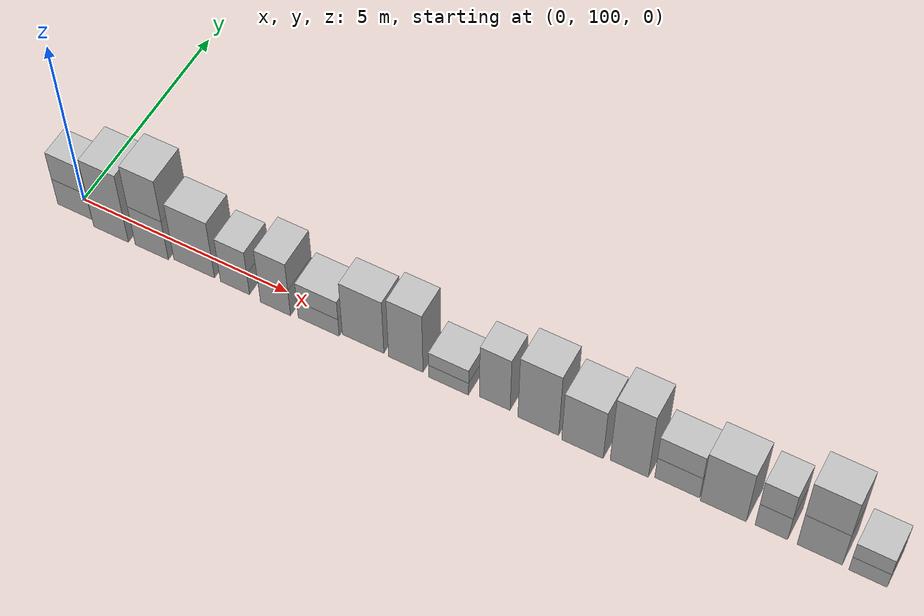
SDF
<sdf version="1.5">
 <world name="default">
  <model name="ground_plane">
   <static>true</static>
   <link name="link">
    <collision name="collision">
     <geometry><plane><normal>0 0 1</normal><size>250 250</size></plane></geometry>
     <surface><friction><ode><mu>1</mu><mu2>1</mu2></ode></friction></surface>
    </collision>
    <visual name="grass">
     <cast_shadows>false</cast_shadows>
     <geometry><mesh><uri>file://grass_plane/meshes/grass_plane.dae</uri></mesh></geometry>
    </visual>
   </link>
  </model>
  <model name="Cardboard_box_100">
   <link name="link_0">
    <pose>0 100 0 0 0 0</pose>
    <inertial>
     <mass>1</mass>
     <inertia>
      <ixx>0.166667</ixx>
      <ixy>0</ixy>
      <ixz>0</ixz>
      <iyy>0.166667</iyy>
      <iyz>0</iyz>
      <izz>0.166667</izz>
     </inertia>
    </inertial>
    <collision name="collision">
     <geometry>
      <mesh>
       <uri>model://Cardboard_box/meshes/cardboard_box.dae</uri>
       <scale>2.16633208267 1.80769235165 2.23867263901</scale>
      </mesh>
     </geometry>
    </collision>
    <visual name="visual">
     <geometry>
      <mesh>
       <uri>model://Cardboard_box/meshes/cardboard_box.dae</uri>
       <scale>2.16633208267 1.80769235165 2.23867263901</scale>
      </mesh>
     </geometry>
    </visual>
   </link>
   <static>1</static>
  </model>
  <model name="Cardboard_box_top_100">
   <link name="link_0">
    <pose>0 100 0.895469055602 0 0 0</pose>
    <inertial>
     <mass>1</mass>
     <inertia>
      <ixx>0.166667</ixx>
      <ixy>0</ixy>
      <ixz>0</ixz>
      <iyy>0.166667</iyy>
      <iyz>0</iyz>
      <izz>0.166667</izz>
     </inertia>
    </inertial>
    <collision name="collision">
     <geometry>
      <mesh>
       <uri>model://Cardboard_box/meshes/cardboard_box.dae</uri>
       <scale>2.16633208267 1.80769235165 2.23867263901</scale>
      </mesh>
     </geometry>
    </collision>
    <visual name="visual">
     <geometry>
      <mesh>
       <uri>model://Cardboard_box/meshes/cardboard_box.dae</uri>
       <scale>2.16633208267 1.80769235165 2.23867263901</scale>
      </mesh>
     </geometry>
    </visual>
   </link>
   <static>1</static>
  </model>
  <model name="Cardboard_box_101">
   <link name="link_0">
    <pose>1 100 0 0 0 0</pose>
    <inertial>
     <mass>1</mass>
     <inertia>
      <ixx>0.166667</ixx>
      <ixy>0</ixy>
      <ixz>0</ixz>
      <iyy>0.166667</iyy>
      <iyz>0</iyz>
      <izz>0.166667</izz>
     </inertia>
    </inertial>
    <collision name="collision">
     <geometry>
      <mesh>
       <uri>model://Cardboard_box/meshes/cardboard_box.dae</uri>
       <scale>2.17949136119 2.47186667254 5.81918530343</scale>
      </mesh>
     </geometry>
    </collision>
    <visual name="visual">
     <geometry>
      <mesh>
       <uri>model://Cardboard_box/meshes/cardboard_box.dae</uri>
       <scale>2.17949136119 2.47186667254 5.81918530343</scale>
      </mesh>
     </geometry>
    </visual>
   </link>
   <static>1</static>
  </model>
  <model name="Cardboard_box_102">
   <link name="link_0">
    <pose>2 100 0 0 0 0</pose>
    <inertial>
     <mass>1</mass>
     <inertia>
      <ixx>0.166667</ixx>
      <ixy>0</ixy>
      <ixz>0</ixz>
      <iyy>0.166667</iyy>
      <iyz>0</iyz>
      <izz>0.166667</izz>
     </inertia>
    </inertial>
    <collision name="collision">
     <geometry>
      <mesh>
       <uri>model://Cardboard_box/meshes/cardboard_box.dae</uri>
       <scale>2.05673330934 2.37601042429 3.41572289365</scale>
      </mesh>
     </geometry>
    </collision>
    <visual name="visual">
     <geometry>
      <mesh>
       <uri>model://Cardboard_box/meshes/cardboard_box.dae</uri>
       <scale>2.05673330934 2.37601042429 3.41572289365</scale>
      </mesh>
     </geometry>
    </visual>
   </link>
   <static>1</static>
  </model>
  <model name="Cardboard_box_top_102">
   <link name="link_0">
    <pose>2 100 1.36628915746 0 0 0</pose>
    <inertial>
     <mass>1</mass>
     <inertia>
      <ixx>0.166667</ixx>
      <ixy>0</ixy>
      <ixz>0</ixz>
      <iyy>0.166667</iyy>
      <iyz>0</iyz>
      <izz>0.166667</izz>
     </inertia>
    </inertial>
    <collision name="collision">
     <geometry>
      <mesh>
       <uri>model://Cardboard_box/meshes/cardboard_box.dae</uri>
       <scale>2.05673330934 2.37601042429 3.41572289365</scale>
      </mesh>
     </geometry>
    </collision>
    <visual name="visual">
     <geometry>
      <mesh>
       <uri>model://Cardboard_box/meshes/cardboard_box.dae</uri>
       <scale>2.05673330934 2.37601042429 3.41572289365</scale>
      </mesh>
     </geometry>
    </visual>
   </link>
   <static>1</static>
  </model>
  <model name="Cardboard_box_103">
   <link name="link_0">
    <pose>3 100 0 0 0 0</pose>
    <inertial>
     <mass>1</mass>
     <inertia>
      <ixx>0.166667</ixx>
      <ixy>0</ixy>
      <ixz>0</ixz>
      <iyy>0.166667</iyy>
      <iyz>0</iyz>
      <izz>0.166667</izz>
     </inertia>
    </inertial>
    <collision name="collision">
     <geometry>
      <mesh>
       <uri>model://Cardboard_box/meshes/cardboard_box.dae</uri>
       <scale>2.49335783592 2.04874953075 4.88450883684</scale>
      </mesh>
     </geometry>
    </collision>
    <visual name="visual">
     <geometry>
      <mesh>
       <uri>model://Cardboard_box/meshes/cardboard_box.dae</uri>
       <scale>2.49335783592 2.04874953075 4.88450883684</scale>
      </mesh>
     </geometry>
    </visual>
   </link>
   <static>1</static>
  </model>
  <model name="Cardboard_box_104">
   <link name="link_0">
    <pose>4 100 0 0 0 0</pose>
    <inertial>
     <mass>1</mass>
     <inertia>
      <ixx>0.166667</ixx>
      <ixy>0</ixy>
      <ixz>0</ixz>
      <iyy>0.166667</iyy>
      <iyz>0</iyz>
      <izz>0.166667</izz>
     </inertia>
    </inertial>
    <collision name="collision">
     <geometry>
      <mesh>
       <uri>model://Cardboard_box/meshes/cardboard_box.dae</uri>
       <scale>1.76096913824 2.12324264561 1.89348972585</scale>
      </mesh>
     </geometry>
    </collision>
    <visual name="visual">
     <geometry>
      <mesh>
       <uri>model://Cardboard_box/meshes/cardboard_box.dae</uri>
       <scale>1.76096913824 2.12324264561 1.89348972585</scale>
      </mesh>
     </geometry>
    </visual>
   </link>
   <static>1</static>
  </model>
  <model name="Cardboard_box_top_104">
   <link name="link_0">
    <pose>4 100 0.757395890339 0 0 0</pose>
    <inertial>
     <mass>1</mass>
     <inertia>
      <ixx>0.166667</ixx>
      <ixy>0</ixy>
      <ixz>0</ixz>
      <iyy>0.166667</iyy>
      <iyz>0</iyz>
      <izz>0.166667</izz>
     </inertia>
    </inertial>
    <collision name="collision">
     <geometry>
      <mesh>
       <uri>model://Cardboard_box/meshes/cardboard_box.dae</uri>
       <scale>1.76096913824 2.12324264561 1.89348972585</scale>
      </mesh>
     </geometry>
    </collision>
    <visual name="visual">
     <geometry>
      <mesh>
       <uri>model://Cardboard_box/meshes/cardboard_box.dae</uri>
       <scale>1.76096913824 2.12324264561 1.89348972585</scale>
      </mesh>
     </geometry>
    </visual>
   </link>
   <static>1</static>
  </model>
  <model name="Cardboard_box_105">
   <link name="link_0">
    <pose>5 100 0 0 0 0</pose>
    <inertial>
     <mass>1</mass>
     <inertia>
      <ixx>0.166667</ixx>
      <ixy>0</ixy>
      <ixz>0</ixz>
      <iyy>0.166667</iyy>
      <iyz>0</iyz>
      <izz>0.166667</izz>
     </inertia>
    </inertial>
    <collision name="collision">
     <geometry>
      <mesh>
       <uri>model://Cardboard_box/meshes/cardboard_box.dae</uri>
       <scale>1.8081347144 2.36449346759 2.32265052283</scale>
      </mesh>
     </geometry>
    </collision>
    <visual name="visual">
     <geometry>
      <mesh>
       <uri>model://Cardboard_box/meshes/cardboard_box.dae</uri>
       <scale>1.8081347144 2.36449346759 2.32265052283</scale>
      </mesh>
     </geometry>
    </visual>
   </link>
   <static>1</static>
  </model>
  <model name="Cardboard_box_top_105">
   <link name="link_0">
    <pose>5 100 0.92906020913 0 0 0</pose>
    <inertial>
     <mass>1</mass>
     <inertia>
      <ixx>0.166667</ixx>
      <ixy>0</ixy>
      <ixz>0</ixz>
      <iyy>0.166667</iyy>
      <iyz>0</iyz>
      <izz>0.166667</izz>
     </inertia>
    </inertial>
    <collision name="collision">
     <geometry>
      <mesh>
       <uri>model://Cardboard_box/meshes/cardboard_box.dae</uri>
       <scale>1.8081347144 2.36449346759 2.32265052283</scale>
      </mesh>
     </geometry>
    </collision>
    <visual name="visual">
     <geometry>
      <mesh>
       <uri>model://Cardboard_box/meshes/cardboard_box.dae</uri>
       <scale>1.8081347144 2.36449346759 2.32265052283</scale>
      </mesh>
     </geometry>
    </visual>
   </link>
   <static>1</static>
  </model>
  <model name="Cardboard_box_106">
   <link name="link_0">
    <pose>6 100 0 0 0 0</pose>
    <inertial>
     <mass>1</mass>
     <inertia>
      <ixx>0.166667</ixx>
      <ixy>0</ixy>
      <ixz>0</ixz>
      <iyy>0.166667</iyy>
      <iyz>0</iyz>
      <izz>0.166667</izz>
     </inertia>
    </inertial>
    <collision name="collision">
     <geometry>
      <mesh>
       <uri>model://Cardboard_box/meshes/cardboard_box.dae</uri>
       <scale>2.42636282518 2.16700738518 1.56299531325</scale>
      </mesh>
     </geometry>
    </collision>
    <visual name="visual">
     <geometry>
      <mesh>
       <uri>model://Cardboard_box/meshes/cardboard_box.dae</uri>
       <scale>2.42636282518 2.16700738518 1.56299531325</scale>
      </mesh>
     </geometry>
    </visual>
   </link>
   <static>1</static>
  </model>
  <model name="Cardboard_box_top_106">
   <link name="link_0">
    <pose>6 100 0.625198125298 0 0 0</pose>
    <inertial>
     <mass>1</mass>
     <inertia>
      <ixx>0.166667</ixx>
      <ixy>0</ixy>
      <ixz>0</ixz>
      <iyy>0.166667</iyy>
      <iyz>0</iyz>
      <izz>0.166667</izz>
     </inertia>
    </inertial>
    <collision name="collision">
     <geometry>
      <mesh>
       <uri>model://Cardboard_box/meshes/cardboard_box.dae</uri>
       <scale>2.42636282518 2.16700738518 1.56299531325</scale>
      </mesh>
     </geometry>
    </collision>
    <visual name="visual">
     <geometry>
      <mesh>
       <uri>model://Cardboard_box/meshes/cardboard_box.dae</uri>
       <scale>2.42636282518 2.16700738518 1.56299531325</scale>
      </mesh>
     </geometry>
    </visual>
   </link>
   <static>1</static>
  </model>
  <model name="Cardboard_box_107">
   <link name="link_0">
    <pose>7 100 0 0 0 0</pose>
    <inertial>
     <mass>1</mass>
     <inertia>
      <ixx>0.166667</ixx>
      <ixy>0</ixy>
      <ixz>0</ixz>
      <iyy>0.166667</iyy>
      <iyz>0</iyz>
      <izz>0.166667</izz>
     </inertia>
    </inertial>
    <collision name="collision">
     <geometry>
      <mesh>
       <uri>model://Cardboard_box/meshes/cardboard_box.dae</uri>
       <scale>2.4347324311 1.80751135377 4.66500197032</scale>
      </mesh>
     </geometry>
    </collision>
    <visual name="visual">
     <geometry>
      <mesh>
       <uri>model://Cardboard_box/meshes/cardboard_box.dae</uri>
       <scale>2.4347324311 1.80751135377 4.66500197032</scale>
      </mesh>
     </geometry>
    </visual>
   </link>
   <static>1</static>
  </model>
  <model name="Cardboard_box_108">
   <link name="link_0">
    <pose>8 100 0 0 0 0</pose>
    <inertial>
     <mass>1</mass>
     <inertia>
      <ixx>0.166667</ixx>
      <ixy>0</ixy>
      <ixz>0</ixz>
      <iyy>0.166667</iyy>
      <iyz>0</iyz>
      <izz>0.166667</izz>
     </inertia>
    </inertial>
    <collision name="collision">
     <geometry>
      <mesh>
       <uri>model://Cardboard_box/meshes/cardboard_box.dae</uri>
       <scale>1.99338447761 1.91633325542 5.18072395337</scale>
      </mesh>
     </geometry>
    </collision>
    <visual name="visual">
     <geometry>
      <mesh>
       <uri>model://Cardboard_box/meshes/cardboard_box.dae</uri>
       <scale>1.99338447761 1.91633325542 5.18072395337</scale>
      </mesh>
     </geometry>
    </visual>
   </link>
   <static>1</static>
  </model>
  <model name="Cardboard_box_109">
   <link name="link_0">
    <pose>9 100 0 0 0 0</pose>
    <inertial>
     <mass>1</mass>
     <inertia>
      <ixx>0.166667</ixx>
      <ixy>0</ixy>
      <ixz>0</ixz>
      <iyy>0.166667</iyy>
      <iyz>0</iyz>
      <izz>0.166667</izz>
     </inertia>
    </inertial>
    <collision name="collision">
     <geometry>
      <mesh>
       <uri>model://Cardboard_box/meshes/cardboard_box.dae</uri>
       <scale>2.27327743123 2.12223825953 1.1453289333</scale>
      </mesh>
     </geometry>
    </collision>
    <visual name="visual">
     <geometry>
      <mesh>
       <uri>model://Cardboard_box/meshes/cardboard_box.dae</uri>
       <scale>2.27327743123 2.12223825953 1.1453289333</scale>
      </mesh>
     </geometry>
    </visual>
   </link>
   <static>1</static>
  </model>
  <model name="Cardboard_box_top_109">
   <link name="link_0">
    <pose>9 100 0.458131573319 0 0 0</pose>
    <inertial>
     <mass>1</mass>
     <inertia>
      <ixx>0.166667</ixx>
      <ixy>0</ixy>
      <ixz>0</ixz>
      <iyy>0.166667</iyy>
      <iyz>0</iyz>
      <izz>0.166667</izz>
     </inertia>
    </inertial>
    <collision name="collision">
     <geometry>
      <mesh>
       <uri>model://Cardboard_box/meshes/cardboard_box.dae</uri>
       <scale>2.27327743123 2.12223825953 1.1453289333</scale>
      </mesh>
     </geometry>
    </collision>
    <visual name="visual">
     <geometry>
      <mesh>
       <uri>model://Cardboard_box/meshes/cardboard_box.dae</uri>
       <scale>2.27327743123 2.12223825953 1.1453289333</scale>
      </mesh>
     </geometry>
    </visual>
   </link>
   <static>1</static>
  </model>
  <model name="Cardboard_box_110">
   <link name="link_0">
    <pose>10 100 0 0 0 0</pose>
    <inertial>
     <mass>1</mass>
     <inertia>
      <ixx>0.166667</ixx>
      <ixy>0</ixy>
      <ixz>0</ixz>
      <iyy>0.166667</iyy>
      <iyz>0</iyz>
      <izz>0.166667</izz>
     </inertia>
    </inertial>
    <collision name="collision">
     <geometry>
      <mesh>
       <uri>model://Cardboard_box/meshes/cardboard_box.dae</uri>
       <scale>1.73718838563 1.73630559247 4.63584815072</scale>
      </mesh>
     </geometry>
    </collision>
    <visual name="visual">
     <geometry>
      <mesh>
       <uri>model://Cardboard_box/meshes/cardboard_box.dae</uri>
       <scale>1.73718838563 1.73630559247 4.63584815072</scale>
      </mesh>
     </geometry>
    </visual>
   </link>
   <static>1</static>
  </model>
  <model name="Cardboard_box_111">
   <link name="link_0">
    <pose>11 100 0 0 0 0</pose>
    <inertial>
     <mass>1</mass>
     <inertia>
      <ixx>0.166667</ixx>
      <ixy>0</ixy>
      <ixz>0</ixz>
      <iyy>0.166667</iyy>
      <iyz>0</iyz>
      <izz>0.166667</izz>
     </inertia>
    </inertial>
    <collision name="collision">
     <geometry>
      <mesh>
       <uri>model://Cardboard_box/meshes/cardboard_box.dae</uri>
       <scale>2.27735754991 2.01667736126 5.4743927362</scale>
      </mesh>
     </geometry>
    </collision>
    <visual name="visual">
     <geometry>
      <mesh>
       <uri>model://Cardboard_box/meshes/cardboard_box.dae</uri>
       <scale>2.27735754991 2.01667736126 5.4743927362</scale>
      </mesh>
     </geometry>
    </visual>
   </link>
   <static>1</static>
  </model>
  <model name="Cardboard_box_112">
   <link name="link_0">
    <pose>12 100 0 0 0 0</pose>
    <inertial>
     <mass>1</mass>
     <inertia>
      <ixx>0.166667</ixx>
      <ixy>0</ixy>
      <ixz>0</ixz>
      <iyy>0.166667</iyy>
      <iyz>0</iyz>
      <izz>0.166667</izz>
     </inertia>
    </inertial>
    <collision name="collision">
     <geometry>
      <mesh>
       <uri>model://Cardboard_box/meshes/cardboard_box.dae</uri>
       <scale>2.28328191238 2.29547036352 4.35750616545</scale>
      </mesh>
     </geometry>
    </collision>
    <visual name="visual">
     <geometry>
      <mesh>
       <uri>model://Cardboard_box/meshes/cardboard_box.dae</uri>
       <scale>2.28328191238 2.29547036352 4.35750616545</scale>
      </mesh>
     </geometry>
    </visual>
   </link>
   <static>1</static>
  </model>
  <model name="Cardboard_box_113">
   <link name="link_0">
    <pose>13 100 0 0 0 0</pose>
    <inertial>
     <mass>1</mass>
     <inertia>
      <ixx>0.166667</ixx>
      <ixy>0</ixy>
      <ixz>0</ixz>
      <iyy>0.166667</iyy>
      <iyz>0</iyz>
      <izz>0.166667</izz>
     </inertia>
    </inertial>
    <collision name="collision">
     <geometry>
      <mesh>
       <uri>model://Cardboard_box/meshes/cardboard_box.dae</uri>
       <scale>2.08114195396 2.09899877982 5.74677149958</scale>
      </mesh>
     </geometry>
    </collision>
    <visual name="visual">
     <geometry>
      <mesh>
       <uri>model://Cardboard_box/meshes/cardboard_box.dae</uri>
       <scale>2.08114195396 2.09899877982 5.74677149958</scale>
      </mesh>
     </geometry>
    </visual>
   </link>
   <static>1</static>
  </model>
  <model name="Cardboard_box_114">
   <link name="link_0">
    <pose>14 100 0 0 0 0</pose>
    <inertial>
     <mass>1</mass>
     <inertia>
      <ixx>0.166667</ixx>
      <ixy>0</ixy>
      <ixz>0</ixz>
      <iyy>0.166667</iyy>
      <iyz>0</iyz>
      <izz>0.166667</izz>
     </inertia>
    </inertial>
    <collision name="collision">
     <geometry>
      <mesh>
       <uri>model://Cardboard_box/meshes/cardboard_box.dae</uri>
       <scale>2.41477739923 1.79148239116 1.93276831789</scale>
      </mesh>
     </geometry>
    </collision>
    <visual name="visual">
     <geometry>
      <mesh>
       <uri>model://Cardboard_box/meshes/cardboard_box.dae</uri>
       <scale>2.41477739923 1.79148239116 1.93276831789</scale>
      </mesh>
     </geometry>
    </visual>
   </link>
   <static>1</static>
  </model>
  <model name="Cardboard_box_top_114">
   <link name="link_0">
    <pose>14 100 0.773107327157 0 0 0</pose>
    <inertial>
     <mass>1</mass>
     <inertia>
      <ixx>0.166667</ixx>
      <ixy>0</ixy>
      <ixz>0</ixz>
      <iyy>0.166667</iyy>
      <iyz>0</iyz>
      <izz>0.166667</izz>
     </inertia>
    </inertial>
    <collision name="collision">
     <geometry>
      <mesh>
       <uri>model://Cardboard_box/meshes/cardboard_box.dae</uri>
       <scale>2.41477739923 1.79148239116 1.93276831789</scale>
      </mesh>
     </geometry>
    </collision>
    <visual name="visual">
     <geometry>
      <mesh>
       <uri>model://Cardboard_box/meshes/cardboard_box.dae</uri>
       <scale>2.41477739923 1.79148239116 1.93276831789</scale>
      </mesh>
     </geometry>
    </visual>
   </link>
   <static>1</static>
  </model>
  <model name="Cardboard_box_115">
   <link name="link_0">
    <pose>15 100 0 0 0 0</pose>
    <inertial>
     <mass>1</mass>
     <inertia>
      <ixx>0.166667</ixx>
      <ixy>0</ixy>
      <ixz>0</ixz>
      <iyy>0.166667</iyy>
      <iyz>0</iyz>
      <izz>0.166667</izz>
     </inertia>
    </inertial>
    <collision name="collision">
     <geometry>
      <mesh>
       <uri>model://Cardboard_box/meshes/cardboard_box.dae</uri>
       <scale>2.43661797541 2.03315464679 4.57077827365</scale>
      </mesh>
     </geometry>
    </collision>
    <visual name="visual">
     <geometry>
      <mesh>
       <uri>model://Cardboard_box/meshes/cardboard_box.dae</uri>
       <scale>2.43661797541 2.03315464679 4.57077827365</scale>
      </mesh>
     </geometry>
    </visual>
   </link>
   <static>1</static>
  </model>
  <model name="Cardboard_box_116">
   <link name="link_0">
    <pose>16 100 0 0 0 0</pose>
    <inertial>
     <mass>1</mass>
     <inertia>
      <ixx>0.166667</ixx>
      <ixy>0</ixy>
      <ixz>0</ixz>
      <iyy>0.166667</iyy>
      <iyz>0</iyz>
      <izz>0.166667</izz>
     </inertia>
    </inertial>
    <collision name="collision">
     <geometry>
      <mesh>
       <uri>model://Cardboard_box/meshes/cardboard_box.dae</uri>
       <scale>1.70544639931 1.9364168232 2.11999675304</scale>
      </mesh>
     </geometry>
    </collision>
    <visual name="visual">
     <geometry>
      <mesh>
       <uri>model://Cardboard_box/meshes/cardboard_box.dae</uri>
       <scale>1.70544639931 1.9364168232 2.11999675304</scale>
      </mesh>
     </geometry>
    </visual>
   </link>
   <static>1</static>
  </model>
  <model name="Cardboard_box_top_116">
   <link name="link_0">
    <pose>16 100 0.847998701217 0 0 0</pose>
    <inertial>
     <mass>1</mass>
     <inertia>
      <ixx>0.166667</ixx>
      <ixy>0</ixy>
      <ixz>0</ixz>
      <iyy>0.166667</iyy>
      <iyz>0</iyz>
      <izz>0.166667</izz>
     </inertia>
    </inertial>
    <collision name="collision">
     <geometry>
      <mesh>
       <uri>model://Cardboard_box/meshes/cardboard_box.dae</uri>
       <scale>1.70544639931 1.9364168232 2.11999675304</scale>
      </mesh>
     </geometry>
    </collision>
    <visual name="visual">
     <geometry>
      <mesh>
       <uri>model://Cardboard_box/meshes/cardboard_box.dae</uri>
       <scale>1.70544639931 1.9364168232 2.11999675304</scale>
      </mesh>
     </geometry>
    </visual>
   </link>
   <static>1</static>
  </model>
  <model name="Cardboard_box_117">
   <link name="link_0">
    <pose>17 100 0 0 0 0</pose>
    <inertial>
     <mass>1</mass>
     <inertia>
      <ixx>0.166667</ixx>
      <ixy>0</ixy>
      <ixz>0</ixz>
      <iyy>0.166667</iyy>
      <iyz>0</iyz>
      <izz>0.166667</izz>
     </inertia>
    </inertial>
    <collision name="collision">
     <geometry>
      <mesh>
       <uri>model://Cardboard_box/meshes/cardboard_box.dae</uri>
       <scale>2.34325282497 1.95720246814 3.01388391324</scale>
      </mesh>
     </geometry>
    </collision>
    <visual name="visual">
     <geometry>
      <mesh>
       <uri>model://Cardboard_box/meshes/cardboard_box.dae</uri>
       <scale>2.34325282497 1.95720246814 3.01388391324</scale>
      </mesh>
     </geometry>
    </visual>
   </link>
   <static>1</static>
  </model>
  <model name="Cardboard_box_top_117">
   <link name="link_0">
    <pose>17 100 1.20555356529 0 0 0</pose>
    <inertial>
     <mass>1</mass>
     <inertia>
      <ixx>0.166667</ixx>
      <ixy>0</ixy>
      <ixz>0</ixz>
      <iyy>0.166667</iyy>
      <iyz>0</iyz>
      <izz>0.166667</izz>
     </inertia>
    </inertial>
    <collision name="collision">
     <geometry>
      <mesh>
       <uri>model://Cardboard_box/meshes/cardboard_box.dae</uri>
       <scale>2.34325282497 1.95720246814 3.01388391324</scale>
      </mesh>
     </geometry>
    </collision>
    <visual name="visual">
     <geometry>
      <mesh>
       <uri>model://Cardboard_box/meshes/cardboard_box.dae</uri>
       <scale>2.34325282497 1.95720246814 3.01388391324</scale>
      </mesh>
     </geometry>
    </visual>
   </link>
   <static>1</static>
  </model>
  <model name="Cardboard_box_118">
   <link name="link_0">
    <pose>18 100 0 0 0 0</pose>
    <inertial>
     <mass>1</mass>
     <inertia>
      <ixx>0.166667</ixx>
      <ixy>0</ixy>
      <ixz>0</ixz>
      <iyy>0.166667</iyy>
      <iyz>0</iyz>
      <izz>0.166667</izz>
     </inertia>
    </inertial>
    <collision name="collision">
     <geometry>
      <mesh>
       <uri>model://Cardboard_box/meshes/cardboard_box.dae</uri>
       <scale>1.96514595571 2.12429124823 1.34270659896</scale>
      </mesh>
     </geometry>
    </collision>
    <visual name="visual">
     <geometry>
      <mesh>
       <uri>model://Cardboard_box/meshes/cardboard_box.dae</uri>
       <scale>1.96514595571 2.12429124823 1.34270659896</scale>
      </mesh>
     </geometry>
    </visual>
   </link>
   <static>1</static>
  </model>
  <model name="Cardboard_box_top_118">
   <link name="link_0">
    <pose>18 100 0.537082639586 0 0 0</pose>
    <inertial>
     <mass>1</mass>
     <inertia>
      <ixx>0.166667</ixx>
      <ixy>0</ixy>
      <ixz>0</ixz>
      <iyy>0.166667</iyy>
      <iyz>0</iyz>
      <izz>0.166667</izz>
     </inertia>
    </inertial>
    <collision name="collision">
     <geometry>
      <mesh>
       <uri>model://Cardboard_box/meshes/cardboard_box.dae</uri>
       <scale>1.96514595571 2.12429124823 1.34270659896</scale>
      </mesh>
     </geometry>
    </collision>
    <visual name="visual">
     <geometry>
      <mesh>
       <uri>model://Cardboard_box/meshes/cardboard_box.dae</uri>
       <scale>1.96514595571 2.12429124823 1.34270659896</scale>
      </mesh>
     </geometry>
    </visual>
   </link>
   <static>1</static>
  </model>
 </world>
</sdf>
